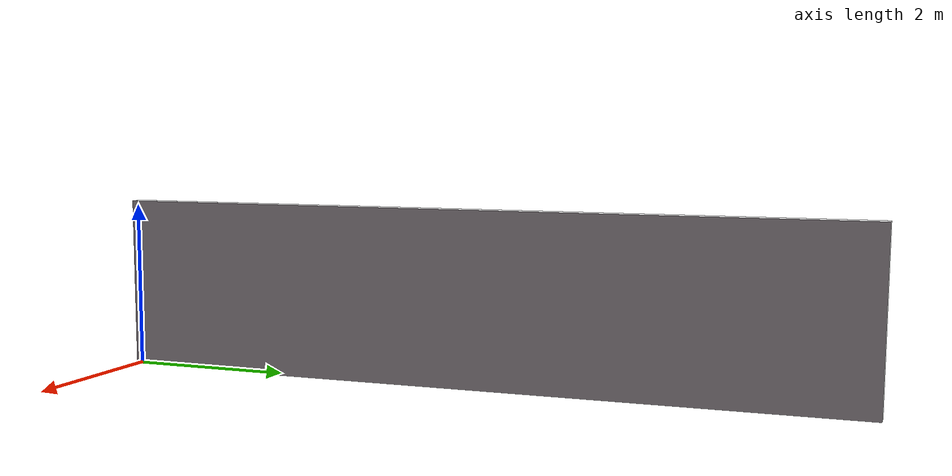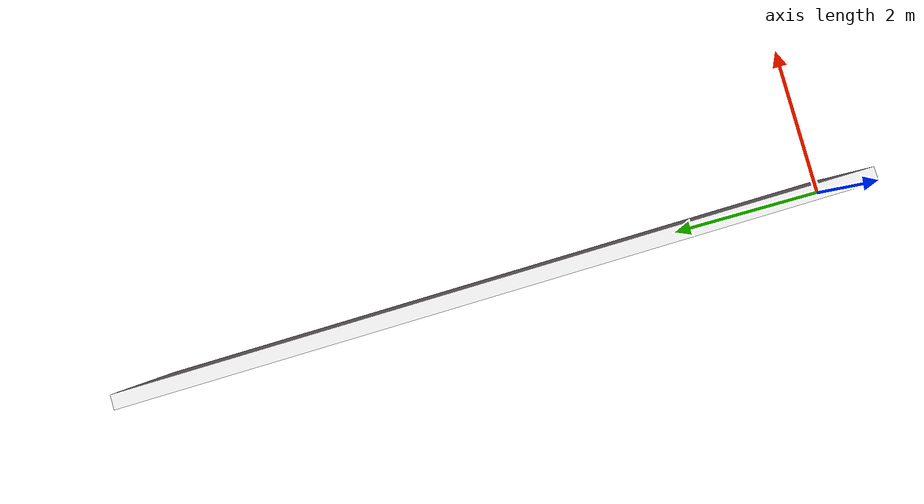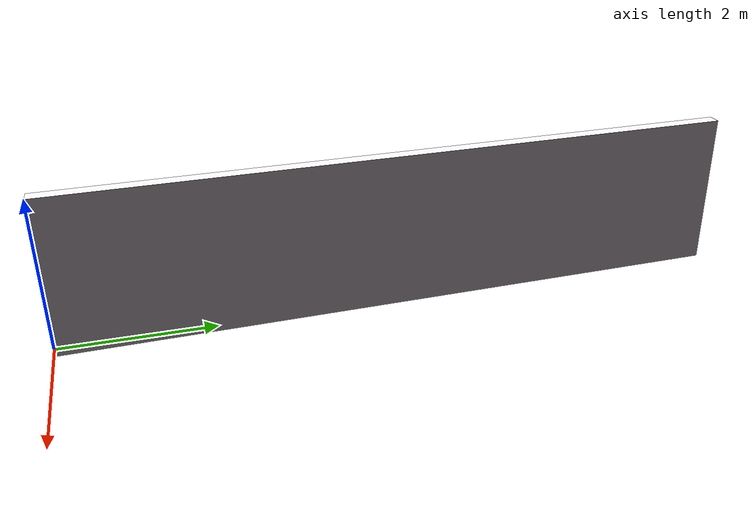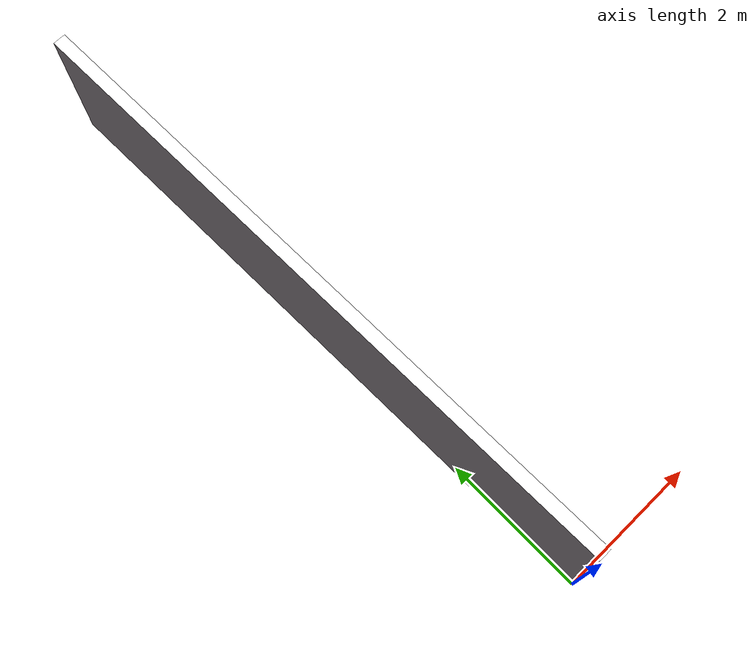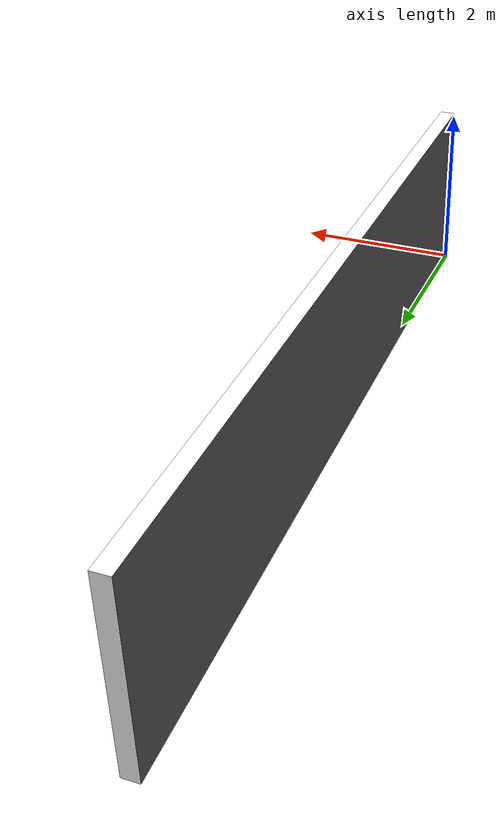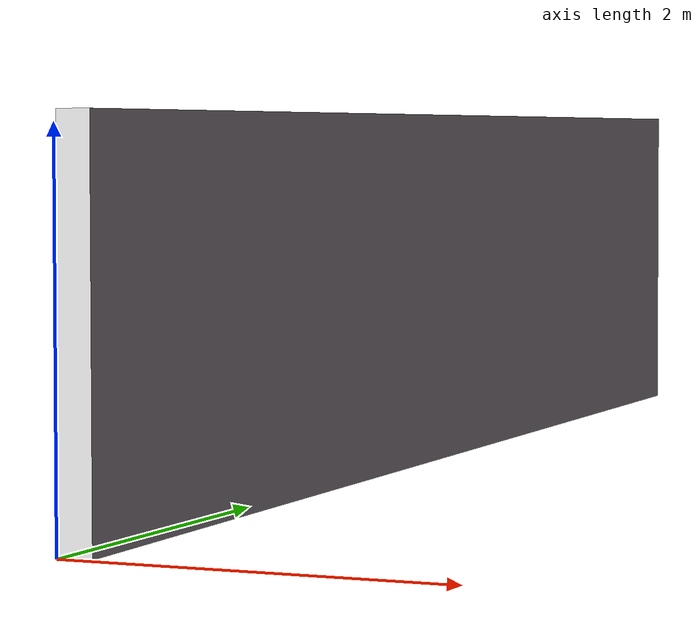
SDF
<?xml version="1.0" ?>
<sdf version="1.6">
  <model name="wall">
    <pose>0 0 0.15 0 0 0</pose>
    <link name="wall_body">
      <inertial>
        <mass>2</mass>
        <inertia>
          <ixx>0.041666667</ixx>
          <ixy>0</ixy>
          <ixz>0</ixz>
          <iyy>0.056666667</iyy>
          <iyz>0</iyz>
          <izz>0.068333333</izz>
        </inertia>
      </inertial>
      <collision name="collision">
        <geometry>
          <box>
            <size>1 1 1</size>
          </box>
        </geometry>
        <surface>
          <friction>
            <ode>
              <mu>1.0</mu>
              <mu2>1.0</mu2>
            </ode>
          </friction>
          <contact>
            <ode>
              <kp>10000000.0</kp>
              <kd>1.0</kd>
              <min_depth>0.001</min_depth>
              <max_vel>0.1</max_vel>
            </ode>
          </contact>
        </surface>
      </collision>
      <visual name="visual">
        <pose>0 0 -0.15 0 0 0</pose>
        <geometry>
          <mesh>
            <uri>model://wall/wall.dae</uri>
            <scale>1.25931896 1.007455168 0.755591376</scale>
          </mesh>
        </geometry>
      </visual>
    </link>
  </model>
</sdf>
